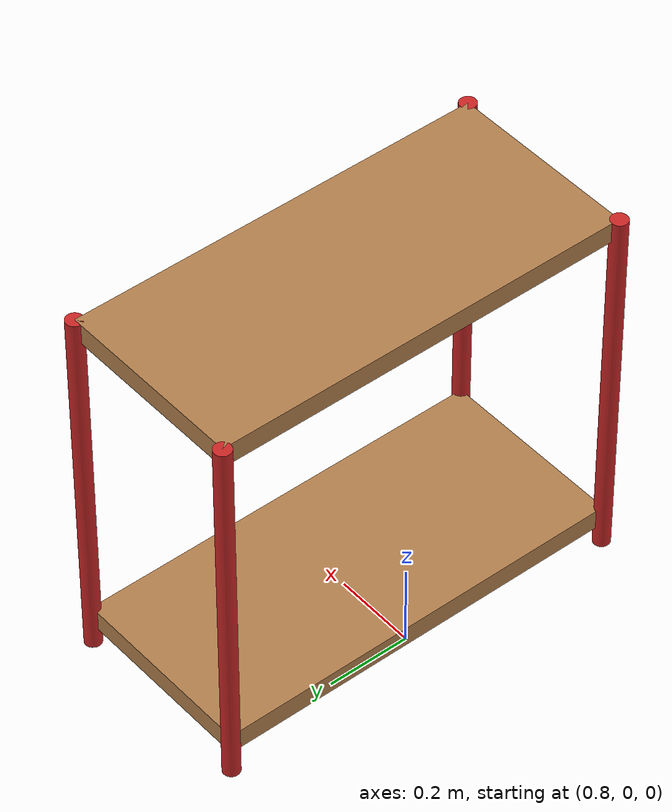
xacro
<?xml version="1.0"?>
<robot name="table"
       xmlns:xi="http://www.w3.org/2001/XInclude"
       xmlns:gazebo="http://playerstage.sourceforge.net/gazebo/xmlschema/#gz"
       xmlns:model="http://playerstage.sourceforge.net/gazebo/xmlschema/#model"
       xmlns:sensor="http://playerstage.sourceforge.net/gazebo/xmlschema/#sensor"
       xmlns:body="http://playerstage.sourceforge.net/gazebo/xmlschema/#body"
       xmlns:geom="http://playerstage.sourceforge.net/gazebo/xmlschema/#geom"
       xmlns:joint="http://playerstage.sourceforge.net/gazebo/xmlschema/#joint"
       xmlns:interface="http://playerstage.sourceforge.net/gazebo/xmlschema/#interface"
       xmlns:rendering="http://playerstage.sourceforge.net/gazebo/xmlschema/#rendering"
       xmlns:renderable="http://playerstage.sourceforge.net/gazebo/xmlschema/#renderable"
       xmlns:controller="http://playerstage.sourceforge.net/gazebo/xmlschema/#controller"
       xmlns:physics="http://playerstage.sourceforge.net/gazebo/xmlschema/#physics">

  <property name="table_height" value="0.9144" />
  <property name="shelf_height" value="0.10" />
  <property name="table_width" value="1.0" />
  <property name="table_depth" value="0.4572" />
  <property name="leg_radius" value="0.02" />
  <property name="table_x" value="0.98" />
  <property name="table_y" value="0.0" />
  <property name="table_z" value="0.0" />

  <property name="table_top_thickness" value="0.05"/>

  <property name="M_PI" value="3.1415926535897931" />

  <!-- tabletop height is .55+.01+.025=.585 -->
  <link name="table_top_link">
    <inertial>
      <mass value="1.0" />
      <origin xyz="${table_x} ${table_y} ${table_z+table_height-table_top_thickness/2}" />
      <inertia ixx="1" ixy="0"  ixz="0"
               iyy="1" iyz="0"
               izz="1" />
    </inertial>
    <visual>
      <origin xyz="${table_x} ${table_y} ${table_z+table_height-table_top_thickness/2}" />
      <geometry>
        <box size="${table_depth} ${table_width} ${table_top_thickness}" />
      </geometry>
    </visual>
    <collision>
      <origin xyz="${table_x} ${table_y} ${table_z+table_height-table_top_thickness/2}" />
      <geometry>
        <box size="${table_depth} ${table_width} ${table_top_thickness}" />
      </geometry>
    </collision>
  </link>
  <gazebo reference="table_top_link">
    <material>Gazebo/LightWood</material>
    <mu1>50.0</mu1>
    <mu2>50.0</mu2>
    <kp>1000000.0</kp>
    <kd>1.0</kd>
  </gazebo>

  <joint name="leg1_joint" type="fixed" >
    <parent link="table_top_link" />
    <origin xyz="${table_x+table_depth/2} ${table_y+table_width/2} ${table_z+table_height}" rpy="0 0 0" />
    <child link="leg1_link" />
  </joint>
  <link name="leg1_link">
    <inertial>
      <mass value="1.0" />
      <origin xyz="0 0 ${-table_height/2}" />
      <inertia ixx="0.1" ixy="0"  ixz="0"
               iyy="0.1" iyz="0"
               izz="0.01" />
    </inertial>
    <visual>
      <origin xyz="0.0 0.0 ${-table_height/2}" rpy="0 0 0" />
      <geometry>
        <cylinder radius="${leg_radius}" length="${table_height}" />
      </geometry>
    </visual>
    <collision>
      <origin xyz="0.0 0.0 ${-table_height/2}" rpy="0.0 0.0 0.0" />
      <geometry>
        <cylinder radius="${leg_radius}" length="${table_height}" />
      </geometry>
    </collision>
  </link>
  <gazebo reference="leg1_link">
    <material>Gazebo/Red</material>
    <mu1>1000.0</mu1>
    <mu2>1000.0</mu2>
    <kp>10000000.0</kp>
    <kd>1.0</kd>
    <selfCollide>true</selfCollide>
  </gazebo>

  <joint name="leg2_joint" type="fixed" >
    <parent link="table_top_link" />
    <origin xyz="${table_x-table_depth/2} ${table_y+table_width/2} ${table_z+table_height}" rpy="0 0 0" />
    <child link="leg2_link" />
  </joint>
  <link name="leg2_link">
    <inertial>
      <mass value="1.0" />
      <origin xyz="0 0 ${-table_height/2}" />
      <inertia ixx="0.1" ixy="0"  ixz="0"
               iyy="0.1" iyz="0"
               izz="0.01" />
    </inertial>
    <visual>
      <origin xyz="0.0 0.0 ${-table_height/2}" rpy="0 0 0" />
      <geometry>
        <cylinder radius="${leg_radius}" length="${table_height}" />
      </geometry>
    </visual>
    <collision>
      <origin xyz="0.0 0.0 ${-table_height/2}" rpy="0.0 0.0 0.0" />
      <geometry>
        <cylinder radius="${leg_radius}" length="${table_height}" />
      </geometry>
    </collision>
  </link>
  <gazebo reference="leg2_link">
    <material>Gazebo/Red</material>
    <mu1>1000.0</mu1>
    <mu2>1000.0</mu2>
    <kp>10000000.0</kp>
    <kd>1.0</kd>
    <selfCollide>true</selfCollide>
  </gazebo>

  <joint name="leg3_joint" type="fixed" >
    <parent link="table_top_link" />
    <origin xyz="${table_x+table_depth/2} ${table_y-table_width/2} ${table_z+table_height}" rpy="0 0 0" />
    <child link="leg3_link" />
  </joint>
  <link name="leg3_link">
    <inertial>
      <mass value="1.0" />
      <origin xyz="0 0 ${-table_height/2}" />
      <inertia ixx="0.1" ixy="0"  ixz="0"
               iyy="0.1" iyz="0"
               izz="0.01" />
    </inertial>
    <visual>
      <origin xyz="0.0 0.0 ${-table_height/2}" rpy="0 0 0" />
      <geometry>
        <cylinder radius="${leg_radius}" length="${table_height}" />
      </geometry>
    </visual>
    <collision>
      <origin xyz="0.0 0.0 ${-table_height/2}" rpy="0.0 0.0 0.0" />
      <geometry>
        <cylinder radius="${leg_radius}" length="${table_height}" />
      </geometry>
    </collision>
  </link>
  <gazebo reference="leg3_link">
    <material>Gazebo/Red</material>
    <mu1>1000.0</mu1>
    <mu2>1000.0</mu2>
    <kp>10000000.0</kp>
    <kd>1.0</kd>
    <selfCollide>true</selfCollide>
  </gazebo>

  <joint name="leg4_joint" type="fixed" >
    <parent link="table_top_link" />
    <origin xyz="${table_x-table_depth/2} ${table_y-table_width/2} ${table_z+table_height}" rpy="0 0 0" />
    <child link="leg4_link" />
  </joint>
  <link name="leg4_link">
    <inertial>
      <mass value="1.0" />
      <origin xyz="0 0 ${-table_height/2}" />
      <inertia ixx="0.1" ixy="0"  ixz="0"
               iyy="0.1" iyz="0"
               izz="0.01" />
    </inertial>
    <visual>
      <origin xyz="0.0 0.0 ${-table_height/2}" rpy="0 0 0" />
      <geometry>
        <cylinder radius="${leg_radius}" length="${table_height}" />
      </geometry>
    </visual>
    <collision>
      <origin xyz="0.0 0.0 ${-table_height/2}" rpy="0.0 0.0 0.0" />
      <geometry>
        <cylinder radius="${leg_radius}" length="${table_height}" />
      </geometry>
    </collision>
  </link>
  <gazebo reference="leg4_link">
    <material>Gazebo/Red</material>
    <mu1>1000.0</mu1>
    <mu2>1000.0</mu2>
    <kp>10000000.0</kp>
    <kd>1.0</kd>
    <selfCollide>true</selfCollide>
  </gazebo>
  <gazebo>
    <canonicalBody>table_top_link</canonicalBody>
  </gazebo>

  <joint name="bottom_shelf_joint" type="fixed" >
    <parent link="table_top_link" />
    <child link="bottom_shelf_link" />
    <origin xyz="0 0 0" rpy="0 0 0" />
  </joint>
  <link name="bottom_shelf_link">
    <inertial>
      <mass value="1.0" />
      <origin xyz="${table_x} ${table_y} ${table_z+shelf_height-table_top_thickness/2}" />
      <inertia ixx="1" ixy="0"  ixz="0"
               iyy="1" iyz="0"
               izz="1" />
    </inertial>
    <visual>
      <origin xyz="${table_x} ${table_y} ${table_z+shelf_height-table_top_thickness/2}" />
      <geometry>
        <box size="${table_depth} ${table_width} ${table_top_thickness}" />
      </geometry>
    </visual>
    <collision>
      <origin xyz="${table_x} ${table_y} ${table_z+shelf_height-table_top_thickness/2}" />
      <geometry>
        <box size="${table_depth} ${table_width} ${table_top_thickness}" />
      </geometry>
    </collision>
  </link>
  <gazebo reference="bottom_shelf_link">
    <material>Gazebo/LightWood</material>
    <mu1>50.0</mu1>
    <mu2>50.0</mu2>
    <kp>1000000.0</kp>
    <kd>1.0</kd>
  </gazebo>

</robot>
